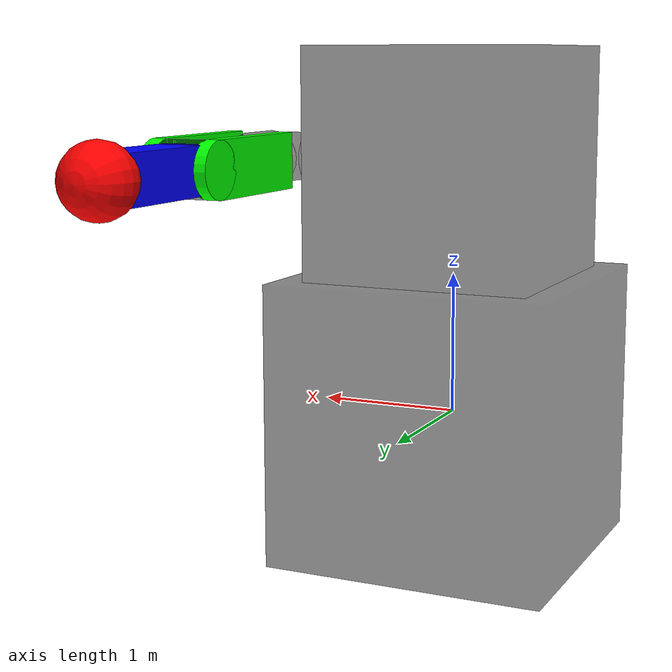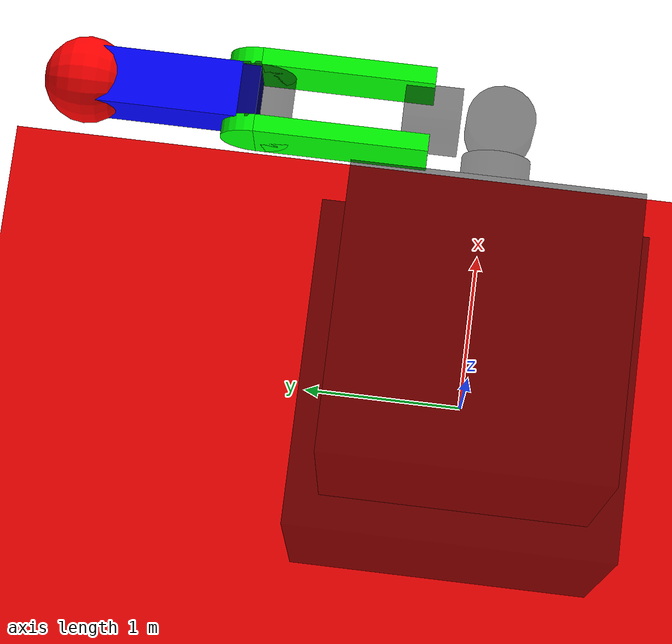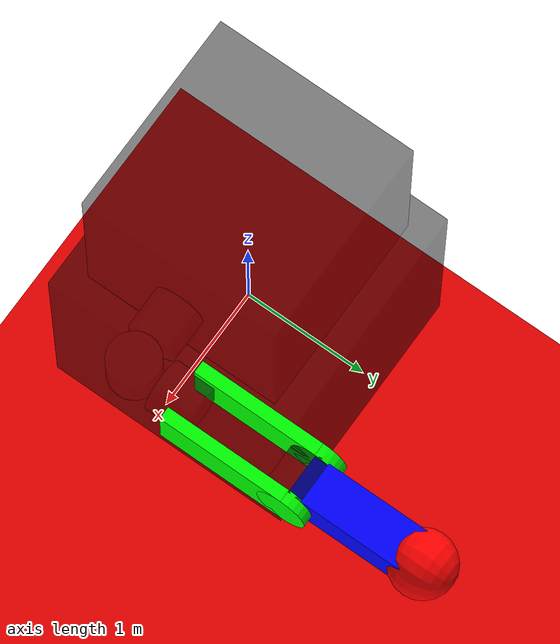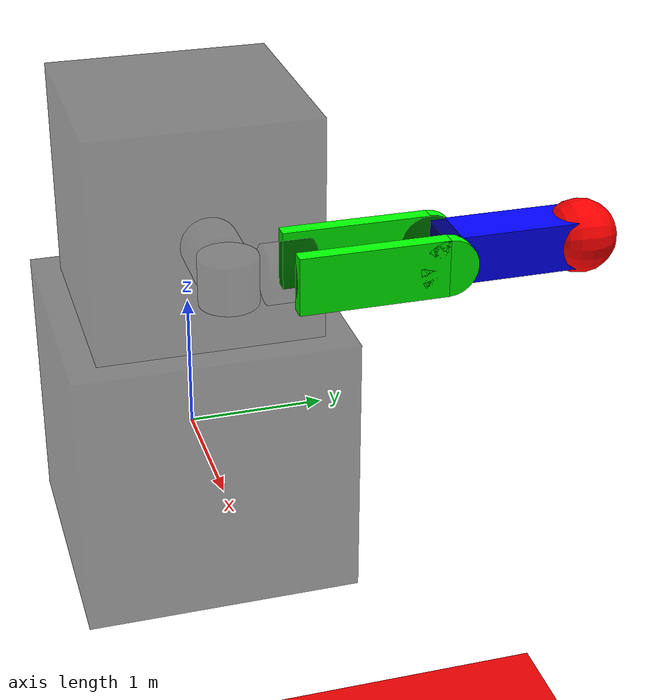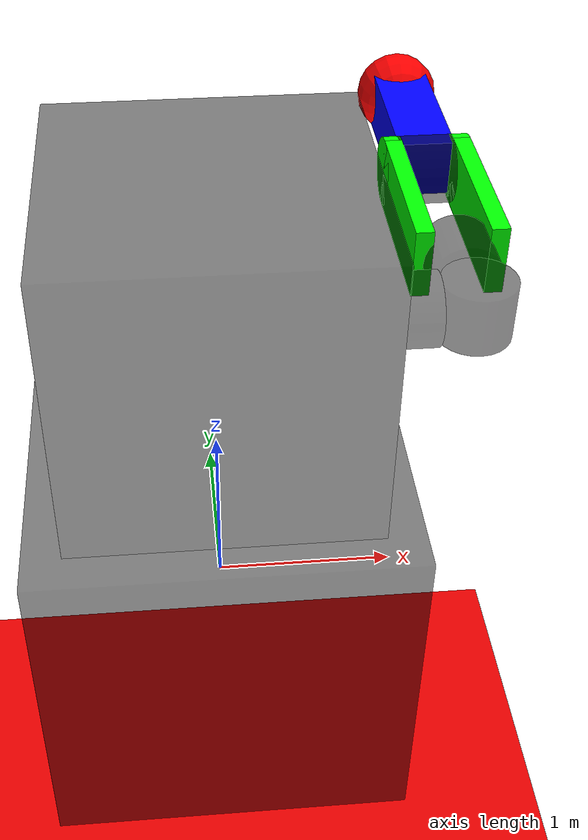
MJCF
ё <mujoco>
    <option timestep="0.00001" />
    <actuator>
        <motor gear="250" joint="shoulder_pitch" name="shoulder_pitch" ctrlrange="-100 100" ctrllimited="true"/>
        <motor gear="250" joint="shoulder_roll" name="shoulder_roll" ctrlrange="-100 100" ctrllimited="true"/>
        <motor gear="250" joint="shoulder_yaw" name="shoulder_yaw" ctrlrange="-100 100" ctrllimited="true"/>
        <motor gear="250" joint="elbow_pitch" name="elbow_pitch" ctrlrange="-100 100" ctrllimited="true"/>
        <motor gear="250" joint="end_effector" name="end_effector" ctrlrange="-100 100" ctrllimited="true"/>
    </actuator>
    <asset>
        <material name="blue" rgba="0 0 1 1" />
        <material name="green" rgba="0 1 0 1" />
        <material name="red" rgba="1 0 0 1" />
        <material name="white" rgba="1 1 1 1" />
        <material name="black" rgba="0 0 0 .5" />
    </asset>
    <worldbody>
        <geom type="plane" size="10 10 0.1" pos="0 0 -5" rgba=".9 0 0 1"  material = "white"/>
        <light diffuse=".5 .5 .5" pos="0 0 3" dir="0 0 -1" />
        <body name = "frame" pos = "0 0 0">
            <geom type="box" size="1 1 1" pos="0 0 0" euler="0 0 0" material="black" />
            <geom type="box" size=".8  .8  .8" pos="0 0 1.8" euler="0 0 0" material="black" />
        </body>
        <body name="link_1" pos=".965 0 1.8">
            <joint name="shoulder_pitch" pos="0 0 0" axis="1 0 0" />
            <geom type="cylinder" size=".198 .165" pos="0 0 0" mass="65" euler="0 90 0" material="black" />
            <body name="link_2" pos="0.363 0 0" euler="0 90 0">
                <joint name="shoulder_roll" pos="0 0 0" axis="1 0 0" />
                <geom type="cylinder" size=".198    .165" pos="0 0 0" mass="65" euler="0 90 0" material="black" />
                <body name="link_3" pos="0 0.396 0" euler="0 90 0">
                    <joint name="shoulder_yaw" pos="0 0 0" axis="0 1 0" />
                    <geom type="cylinder" size=".198 .165" pos="0 0 0" density="65" euler="90 0 0" material="black" />
                    <geom type="box" size=".05 .198   .5" pos=".2 .5 0" density="20" euler="90 0 0" material="green" />
                    <geom type="box" size=".05 .198   .5" pos="-.2 .5 0" density="20" euler="90 0 0" material="green" />
                    <geom type="cylinder" size=".198 .05" pos=".2 1 0" euler="0 90 0" material="green" />
                    <geom type="cylinder" size=".198 .05" pos="-.2 1 0" euler="0 90 0" material="green" />
                    <body name="link_4" pos="0 1 0" euler="0 90 0">
                        <joint name="elbow_pitch" pos="0 0 0" axis="0 0 1" />
                        <geom type="cylinder" size=".198 .165" pos="0 0 0" density="65" euler="0 0 0" material="black" />
                        <geom type="box" size=".165 .165   .5" pos="0 .5 0" density="20" euler="90 0 0" material="blue" />
                        <body name="link_5" pos="0 1 0" euler="0 90 0">
                            <joint name="end_effector" pos="0 0 0" axis="1 0 0" />
                            <geom type="sphere" size=".25" pos="0 0 0" euler="90 0 0" material="red" />
                        </body>

                    </body>
                </body>
            </body>
        </body>
    </worldbody>
    <equality>
    </equality>
    <contact>
    </contact>
</mujoco>
